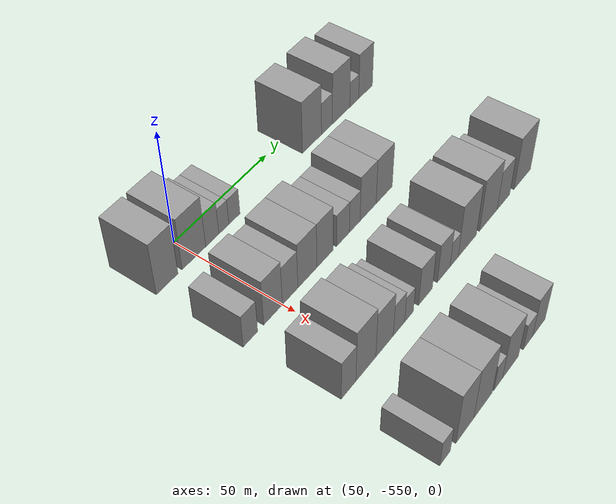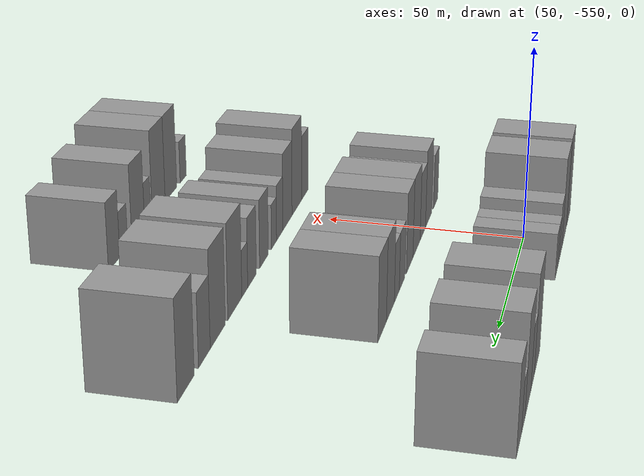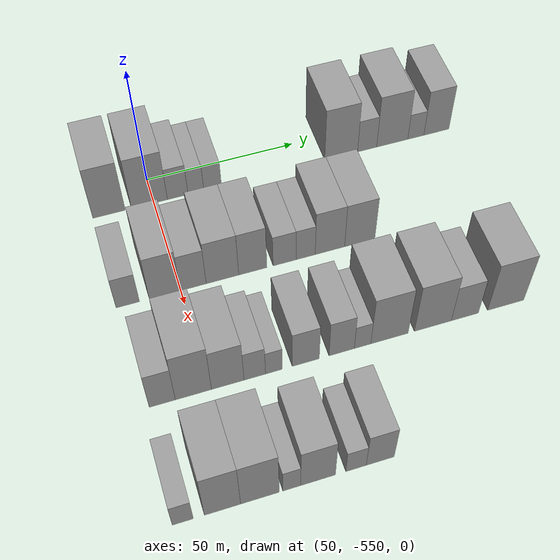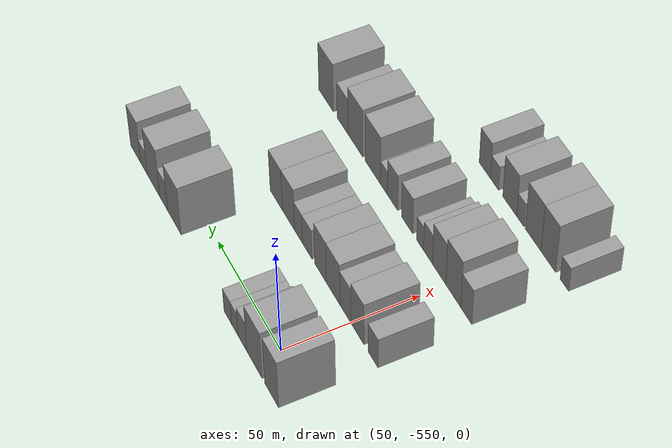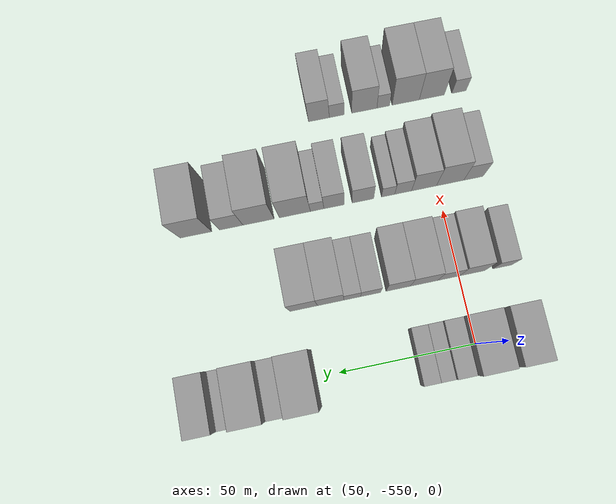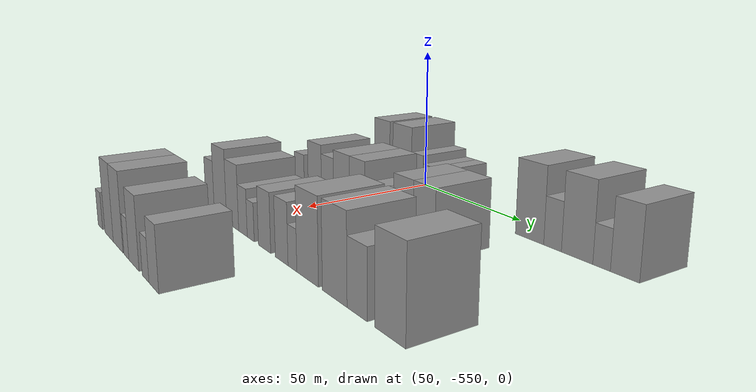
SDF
<sdf version="1.6">
 <world name="default">
  <model name="building_1">
   <static>1</static>
   <pose>50.0000 -564.7196 0 0.000000 0.000000 0.000000</pose>
   <link name="link">
    <pose>0 0 12.00 0 0 0</pose>
    <collision name="collision"><geometry><box><size>20.0000 10.5607 24.0000</size></box></geometry></collision>
    <visual name="visual">
     <cast_shadows>0</cast_shadows>
     <geometry><box><size>20.0000 10.5607 24.0000</size></box></geometry>
     <material>
      <script>
       <uri>model://grey_wall/materials/scripts</uri>
       <uri>model://grey_wall/materials/textures</uri>
       <name>vrc/grey_wall</name>
      </script>
     </material>
    </visual>
   </link>
  </model>
  <model name="building_2">
   <static>1</static>
   <pose>50.0000 -551.4736 0 0.000000 0.000000 0.000000</pose>
   <link name="link">
    <pose>0 0 12.00 0 0 0</pose>
    <collision name="collision"><geometry><box><size>20.0000 11.9315 24.0000</size></box></geometry></collision>
    <visual name="visual">
     <cast_shadows>0</cast_shadows>
     <geometry><box><size>20.0000 11.9315 24.0000</size></box></geometry>
     <material>
      <script>
       <uri>model://grey_wall/materials/scripts</uri>
       <uri>model://grey_wall/materials/textures</uri>
       <name>vrc/grey_wall</name>
      </script>
     </material>
    </visual>
   </link>
  </model>
  <model name="building_3">
   <static>1</static>
   <pose>50.0000 -542.0837 0 0.000000 0.000000 0.000000</pose>
   <link name="link">
    <pose>0 0 7.50 0 0 0</pose>
    <collision name="collision"><geometry><box><size>20.0000 6.8483 15.0000</size></box></geometry></collision>
    <visual name="visual">
     <cast_shadows>0</cast_shadows>
     <geometry><box><size>20.0000 6.8483 15.0000</size></box></geometry>
     <material>
      <script>
       <uri>model://grey_wall/materials/scripts</uri>
       <uri>model://grey_wall/materials/textures</uri>
       <name>vrc/grey_wall</name>
      </script>
     </material>
    </visual>
   </link>
  </model>
  <model name="building_4">
   <static>1</static>
   <pose>50.0000 -536.0153 0 0.000000 0.000000 0.000000</pose>
   <link name="link">
    <pose>0 0 6.00 0 0 0</pose>
    <collision name="collision"><geometry><box><size>20.0000 5.2885 12.0000</size></box></geometry></collision>
    <visual name="visual">
     <cast_shadows>0</cast_shadows>
     <geometry><box><size>20.0000 5.2885 12.0000</size></box></geometry>
     <material>
      <script>
       <uri>model://grey_wall/materials/scripts</uri>
       <uri>model://grey_wall/materials/textures</uri>
       <name>vrc/grey_wall</name>
      </script>
     </material>
    </visual>
   </link>
  </model>
  <model name="building_5">
   <static>1</static>
   <pose>50.0000 -530.3753 0 0.000000 0.000000 0.000000</pose>
   <link name="link">
    <pose>0 0 6.00 0 0 0</pose>
    <collision name="collision"><geometry><box><size>20.0000 5.9915 12.0000</size></box></geometry></collision>
    <visual name="visual">
     <cast_shadows>0</cast_shadows>
     <geometry><box><size>20.0000 5.9915 12.0000</size></box></geometry>
     <material>
      <script>
       <uri>model://grey_wall/materials/scripts</uri>
       <uri>model://grey_wall/materials/textures</uri>
       <name>vrc/grey_wall</name>
      </script>
     </material>
    </visual>
   </link>
  </model>
  <model name="building_6">
   <static>1</static>
   <pose>50.0000 -485.9031 0 0.000000 0.000000 0.000000</pose>
   <link name="link">
    <pose>0 0 12.00 0 0 0</pose>
    <collision name="collision"><geometry><box><size>20.0000 11.6509 24.0000</size></box></geometry></collision>
    <visual name="visual">
     <cast_shadows>0</cast_shadows>
     <geometry><box><size>20.0000 11.6509 24.0000</size></box></geometry>
     <material>
      <script>
       <uri>model://grey_wall/materials/scripts</uri>
       <uri>model://grey_wall/materials/textures</uri>
       <name>vrc/grey_wall</name>
      </script>
     </material>
    </visual>
   </link>
  </model>
  <model name="building_7">
   <static>1</static>
   <pose>50.0000 -476.6846 0 0.000000 0.000000 0.000000</pose>
   <link name="link">
    <pose>0 0 7.50 0 0 0</pose>
    <collision name="collision"><geometry><box><size>20.0000 6.7861 15.0000</size></box></geometry></collision>
    <visual name="visual">
     <cast_shadows>0</cast_shadows>
     <geometry><box><size>20.0000 6.7861 15.0000</size></box></geometry>
     <material>
      <script>
       <uri>model://grey_wall/materials/scripts</uri>
       <uri>model://grey_wall/materials/textures</uri>
       <name>vrc/grey_wall</name>
      </script>
     </material>
    </visual>
   </link>
  </model>
  <model name="building_8">
   <static>1</static>
   <pose>50.0000 -467.6804 0 0.000000 0.000000 0.000000</pose>
   <link name="link">
    <pose>0 0 12.00 0 0 0</pose>
    <collision name="collision"><geometry><box><size>20.0000 11.2222 24.0000</size></box></geometry></collision>
    <visual name="visual">
     <cast_shadows>0</cast_shadows>
     <geometry><box><size>20.0000 11.2222 24.0000</size></box></geometry>
     <material>
      <script>
       <uri>model://grey_wall/materials/scripts</uri>
       <uri>model://grey_wall/materials/textures</uri>
       <name>vrc/grey_wall</name>
      </script>
     </material>
    </visual>
   </link>
  </model>
  <model name="building_9">
   <static>1</static>
   <pose>50.0000 -459.1418 0 0.000000 0.000000 0.000000</pose>
   <link name="link">
    <pose>0 0 6.00 0 0 0</pose>
    <collision name="collision"><geometry><box><size>20.0000 5.8550 12.0000</size></box></geometry></collision>
    <visual name="visual">
     <cast_shadows>0</cast_shadows>
     <geometry><box><size>20.0000 5.8550 12.0000</size></box></geometry>
     <material>
      <script>
       <uri>model://grey_wall/materials/scripts</uri>
       <uri>model://grey_wall/materials/textures</uri>
       <name>vrc/grey_wall</name>
      </script>
     </material>
    </visual>
   </link>
  </model>
  <model name="building_10">
   <static>1</static>
   <pose>50.0000 -451.6347 0 0.000000 0.000000 0.000000</pose>
   <link name="link">
    <pose>0 0 10.50 0 0 0</pose>
    <collision name="collision"><geometry><box><size>20.0000 9.1591 21.0000</size></box></geometry></collision>
    <visual name="visual">
     <cast_shadows>0</cast_shadows>
     <geometry><box><size>20.0000 9.1591 21.0000</size></box></geometry>
     <material>
      <script>
       <uri>model://grey_wall/materials/scripts</uri>
       <uri>model://grey_wall/materials/textures</uri>
       <name>vrc/grey_wall</name>
      </script>
     </material>
    </visual>
   </link>
  </model>
  <model name="building_119">
   <static>1</static>
   <pose>85.0000 -566.3953 0 0.000000 0.000000 0.000000</pose>
   <link name="link">
    <pose>0 0 7.50 0 0 0</pose>
    <collision name="collision"><geometry><box><size>20.0000 7.2094 15.0000</size></box></geometry></collision>
    <visual name="visual">
     <cast_shadows>0</cast_shadows>
     <geometry><box><size>20.0000 7.2094 15.0000</size></box></geometry>
     <material>
      <script>
       <uri>model://grey_wall/materials/scripts</uri>
       <uri>model://grey_wall/materials/textures</uri>
       <name>vrc/grey_wall</name>
      </script>
     </material>
    </visual>
   </link>
  </model>
  <model name="building_120">
   <static>1</static>
   <pose>85.0000 -554.9812 0 0.000000 0.000000 0.000000</pose>
   <link name="link">
    <pose>0 0 10.50 0 0 0</pose>
    <collision name="collision"><geometry><box><size>20.0000 9.6188 21.0000</size></box></geometry></collision>
    <visual name="visual">
     <cast_shadows>0</cast_shadows>
     <geometry><box><size>20.0000 9.6188 21.0000</size></box></geometry>
     <material>
      <script>
       <uri>model://grey_wall/materials/scripts</uri>
       <uri>model://grey_wall/materials/textures</uri>
       <name>vrc/grey_wall</name>
      </script>
     </material>
    </visual>
   </link>
  </model>
  <model name="building_121">
   <static>1</static>
   <pose>85.0000 -546.0590 0 0.000000 0.000000 0.000000</pose>
   <link name="link">
    <pose>0 0 9.00 0 0 0</pose>
    <collision name="collision"><geometry><box><size>20.0000 8.2254 18.0000</size></box></geometry></collision>
    <visual name="visual">
     <cast_shadows>0</cast_shadows>
     <geometry><box><size>20.0000 8.2254 18.0000</size></box></geometry>
     <material>
      <script>
       <uri>model://grey_wall/materials/scripts</uri>
       <uri>model://grey_wall/materials/textures</uri>
       <name>vrc/grey_wall</name>
      </script>
     </material>
    </visual>
   </link>
  </model>
  <model name="building_122">
   <static>1</static>
   <pose>85.0000 -536.7730 0 0.000000 0.000000 0.000000</pose>
   <link name="link">
    <pose>0 0 10.50 0 0 0</pose>
    <collision name="collision"><geometry><box><size>20.0000 10.3467 21.0000</size></box></geometry></collision>
    <visual name="visual">
     <cast_shadows>0</cast_shadows>
     <geometry><box><size>20.0000 10.3467 21.0000</size></box></geometry>
     <material>
      <script>
       <uri>model://grey_wall/materials/scripts</uri>
       <uri>model://grey_wall/materials/textures</uri>
       <name>vrc/grey_wall</name>
      </script>
     </material>
    </visual>
   </link>
  </model>
  <model name="building_123">
   <static>1</static>
   <pose>85.0000 -527.0674 0 0.000000 0.000000 0.000000</pose>
   <link name="link">
    <pose>0 0 10.50 0 0 0</pose>
    <collision name="collision"><geometry><box><size>20.0000 9.0643 21.0000</size></box></geometry></collision>
    <visual name="visual">
     <cast_shadows>0</cast_shadows>
     <geometry><box><size>20.0000 9.0643 21.0000</size></box></geometry>
     <material>
      <script>
       <uri>model://grey_wall/materials/scripts</uri>
       <uri>model://grey_wall/materials/textures</uri>
       <name>vrc/grey_wall</name>
      </script>
     </material>
    </visual>
   </link>
  </model>
  <model name="building_124">
   <static>1</static>
   <pose>85.0000 -516.8049 0 0.000000 0.000000 0.000000</pose>
   <link name="link">
    <pose>0 0 7.50 0 0 0</pose>
    <collision name="collision"><geometry><box><size>20.0000 7.4608 15.0000</size></box></geometry></collision>
    <visual name="visual">
     <cast_shadows>0</cast_shadows>
     <geometry><box><size>20.0000 7.4608 15.0000</size></box></geometry>
     <material>
      <script>
       <uri>model://grey_wall/materials/scripts</uri>
       <uri>model://grey_wall/materials/textures</uri>
       <name>vrc/grey_wall</name>
      </script>
     </material>
    </visual>
   </link>
  </model>
  <model name="building_125">
   <static>1</static>
   <pose>85.0000 -509.9454 0 0.000000 0.000000 0.000000</pose>
   <link name="link">
    <pose>0 0 7.50 0 0 0</pose>
    <collision name="collision"><geometry><box><size>20.0000 6.2583 15.0000</size></box></geometry></collision>
    <visual name="visual">
     <cast_shadows>0</cast_shadows>
     <geometry><box><size>20.0000 6.2583 15.0000</size></box></geometry>
     <material>
      <script>
       <uri>model://grey_wall/materials/scripts</uri>
       <uri>model://grey_wall/materials/textures</uri>
       <name>vrc/grey_wall</name>
      </script>
     </material>
    </visual>
   </link>
  </model>
  <model name="building_126">
   <static>1</static>
   <pose>85.0000 -501.9512 0 0.000000 0.000000 0.000000</pose>
   <link name="link">
    <pose>0 0 10.50 0 0 0</pose>
    <collision name="collision"><geometry><box><size>20.0000 9.7301 21.0000</size></box></geometry></collision>
    <visual name="visual">
     <cast_shadows>0</cast_shadows>
     <geometry><box><size>20.0000 9.7301 21.0000</size></box></geometry>
     <material>
      <script>
       <uri>model://grey_wall/materials/scripts</uri>
       <uri>model://grey_wall/materials/textures</uri>
       <name>vrc/grey_wall</name>
      </script>
     </material>
    </visual>
   </link>
  </model>
  <model name="building_127">
   <static>1</static>
   <pose>85.0000 -492.0390 0 0.000000 0.000000 0.000000</pose>
   <link name="link">
    <pose>0 0 10.50 0 0 0</pose>
    <collision name="collision"><geometry><box><size>20.0000 10.0943 21.0000</size></box></geometry></collision>
    <visual name="visual">
     <cast_shadows>0</cast_shadows>
     <geometry><box><size>20.0000 10.0943 21.0000</size></box></geometry>
     <material>
      <script>
       <uri>model://grey_wall/materials/scripts</uri>
       <uri>model://grey_wall/materials/textures</uri>
       <name>vrc/grey_wall</name>
      </script>
     </material>
    </visual>
   </link>
  </model>
  <model name="building_244">
   <static>1</static>
   <pose>120.0000 -564.2014 0 0.000000 0.000000 0.000000</pose>
   <link name="link">
    <pose>0 0 9.00 0 0 0</pose>
    <collision name="collision"><geometry><box><size>20.0000 7.5972 18.0000</size></box></geometry></collision>
    <visual name="visual">
     <cast_shadows>0</cast_shadows>
     <geometry><box><size>20.0000 7.5972 18.0000</size></box></geometry>
     <material>
      <script>
       <uri>model://grey_wall/materials/scripts</uri>
       <uri>model://grey_wall/materials/textures</uri>
       <name>vrc/grey_wall</name>
      </script>
     </material>
    </visual>
   </link>
  </model>
  <model name="building_245">
   <static>1</static>
   <pose>120.0000 -555.0957 0 0.000000 0.000000 0.000000</pose>
   <link name="link">
    <pose>0 0 12.00 0 0 0</pose>
    <collision name="collision"><geometry><box><size>20.0000 10.6141 24.0000</size></box></geometry></collision>
    <visual name="visual">
     <cast_shadows>0</cast_shadows>
     <geometry><box><size>20.0000 10.6141 24.0000</size></box></geometry>
     <material>
      <script>
       <uri>model://grey_wall/materials/scripts</uri>
       <uri>model://grey_wall/materials/textures</uri>
       <name>vrc/grey_wall</name>
      </script>
     </material>
    </visual>
   </link>
  </model>
  <model name="building_246">
   <static>1</static>
   <pose>120.0000 -544.9518 0 0.000000 0.000000 0.000000</pose>
   <link name="link">
    <pose>0 0 10.50 0 0 0</pose>
    <collision name="collision"><geometry><box><size>20.0000 9.6738 21.0000</size></box></geometry></collision>
    <visual name="visual">
     <cast_shadows>0</cast_shadows>
     <geometry><box><size>20.0000 9.6738 21.0000</size></box></geometry>
     <material>
      <script>
       <uri>model://grey_wall/materials/scripts</uri>
       <uri>model://grey_wall/materials/textures</uri>
       <name>vrc/grey_wall</name>
      </script>
     </material>
    </visual>
   </link>
  </model>
  <model name="building_247">
   <static>1</static>
   <pose>120.0000 -536.8824 0 0.000000 0.000000 0.000000</pose>
   <link name="link">
    <pose>0 0 7.50 0 0 0</pose>
    <collision name="collision"><geometry><box><size>20.0000 6.4649 15.0000</size></box></geometry></collision>
    <visual name="visual">
     <cast_shadows>0</cast_shadows>
     <geometry><box><size>20.0000 6.4649 15.0000</size></box></geometry>
     <material>
      <script>
       <uri>model://grey_wall/materials/scripts</uri>
       <uri>model://grey_wall/materials/textures</uri>
       <name>vrc/grey_wall</name>
      </script>
     </material>
    </visual>
   </link>
  </model>
  <model name="building_248">
   <static>1</static>
   <pose>120.0000 -531.1086 0 0.000000 0.000000 0.000000</pose>
   <link name="link">
    <pose>0 0 6.00 0 0 0</pose>
    <collision name="collision"><geometry><box><size>20.0000 5.0826 12.0000</size></box></geometry></collision>
    <visual name="visual">
     <cast_shadows>0</cast_shadows>
     <geometry><box><size>20.0000 5.0826 12.0000</size></box></geometry>
     <material>
      <script>
       <uri>model://grey_wall/materials/scripts</uri>
       <uri>model://grey_wall/materials/textures</uri>
       <name>vrc/grey_wall</name>
      </script>
     </material>
    </visual>
   </link>
  </model>
  <model name="building_249">
   <static>1</static>
   <pose>120.0000 -521.4335 0 0.000000 0.000000 0.000000</pose>
   <link name="link">
    <pose>0 0 9.00 0 0 0</pose>
    <collision name="collision"><geometry><box><size>20.0000 8.2676 18.0000</size></box></geometry></collision>
    <visual name="visual">
     <cast_shadows>0</cast_shadows>
     <geometry><box><size>20.0000 8.2676 18.0000</size></box></geometry>
     <material>
      <script>
       <uri>model://grey_wall/materials/scripts</uri>
       <uri>model://grey_wall/materials/textures</uri>
       <name>vrc/grey_wall</name>
      </script>
     </material>
    </visual>
   </link>
  </model>
  <model name="building_250">
   <static>1</static>
   <pose>120.0000 -510.3889 0 0.000000 0.000000 0.000000</pose>
   <link name="link">
    <pose>0 0 9.00 0 0 0</pose>
    <collision name="collision"><geometry><box><size>20.0000 7.8214 18.0000</size></box></geometry></collision>
    <visual name="visual">
     <cast_shadows>0</cast_shadows>
     <geometry><box><size>20.0000 7.8214 18.0000</size></box></geometry>
     <material>
      <script>
       <uri>model://grey_wall/materials/scripts</uri>
       <uri>model://grey_wall/materials/textures</uri>
       <name>vrc/grey_wall</name>
      </script>
     </material>
    </visual>
   </link>
  </model>
  <model name="building_251">
   <static>1</static>
   <pose>120.0000 -503.9011 0 0.000000 0.000000 0.000000</pose>
   <link name="link">
    <pose>0 0 6.00 0 0 0</pose>
    <collision name="collision"><geometry><box><size>20.0000 5.1543 12.0000</size></box></geometry></collision>
    <visual name="visual">
     <cast_shadows>0</cast_shadows>
     <geometry><box><size>20.0000 5.1543 12.0000</size></box></geometry>
     <material>
      <script>
       <uri>model://grey_wall/materials/scripts</uri>
       <uri>model://grey_wall/materials/textures</uri>
       <name>vrc/grey_wall</name>
      </script>
     </material>
    </visual>
   </link>
  </model>
  <model name="building_252">
   <static>1</static>
   <pose>120.0000 -495.4341 0 0.000000 0.000000 0.000000</pose>
   <link name="link">
    <pose>0 0 12.00 0 0 0</pose>
    <collision name="collision"><geometry><box><size>20.0000 11.7798 24.0000</size></box></geometry></collision>
    <visual name="visual">
     <cast_shadows>0</cast_shadows>
     <geometry><box><size>20.0000 11.7798 24.0000</size></box></geometry>
     <material>
      <script>
       <uri>model://grey_wall/materials/scripts</uri>
       <uri>model://grey_wall/materials/textures</uri>
       <name>vrc/grey_wall</name>
      </script>
     </material>
    </visual>
   </link>
  </model>
  <model name="building_253">
   <static>1</static>
   <pose>120.0000 -481.6303 0 0.000000 0.000000 0.000000</pose>
   <link name="link">
    <pose>0 0 12.00 0 0 0</pose>
    <collision name="collision"><geometry><box><size>20.0000 11.8277 24.0000</size></box></geometry></collision>
    <visual name="visual">
     <cast_shadows>0</cast_shadows>
     <geometry><box><size>20.0000 11.8277 24.0000</size></box></geometry>
     <material>
      <script>
       <uri>model://grey_wall/materials/scripts</uri>
       <uri>model://grey_wall/materials/textures</uri>
       <name>vrc/grey_wall</name>
      </script>
     </material>
    </visual>
   </link>
  </model>
  <model name="building_254">
   <static>1</static>
   <pose>120.0000 -471.3170 0 0.000000 0.000000 0.000000</pose>
   <link name="link">
    <pose>0 0 9.00 0 0 0</pose>
    <collision name="collision"><geometry><box><size>20.0000 8.7990 18.0000</size></box></geometry></collision>
    <visual name="visual">
     <cast_shadows>0</cast_shadows>
     <geometry><box><size>20.0000 8.7990 18.0000</size></box></geometry>
     <material>
      <script>
       <uri>model://grey_wall/materials/scripts</uri>
       <uri>model://grey_wall/materials/textures</uri>
       <name>vrc/grey_wall</name>
      </script>
     </material>
    </visual>
   </link>
  </model>
  <model name="building_255">
   <static>1</static>
   <pose>120.0000 -457.9702 0 0.000000 0.000000 0.000000</pose>
   <link name="link">
    <pose>0 0 12.00 0 0 0</pose>
    <collision name="collision"><geometry><box><size>20.0000 11.8944 24.0000</size></box></geometry></collision>
    <visual name="visual">
     <cast_shadows>0</cast_shadows>
     <geometry><box><size>20.0000 11.8944 24.0000</size></box></geometry>
     <material>
      <script>
       <uri>model://grey_wall/materials/scripts</uri>
       <uri>model://grey_wall/materials/textures</uri>
       <name>vrc/grey_wall</name>
      </script>
     </material>
    </visual>
   </link>
  </model>
  <model name="building_364">
   <static>1</static>
   <pose>155.0000 -567.1345 0 0.000000 0.000000 0.000000</pose>
   <link name="link">
    <pose>0 0 6.00 0 0 0</pose>
    <collision name="collision"><geometry><box><size>20.0000 5.7309 12.0000</size></box></geometry></collision>
    <visual name="visual">
     <cast_shadows>0</cast_shadows>
     <geometry><box><size>20.0000 5.7309 12.0000</size></box></geometry>
     <material>
      <script>
       <uri>model://grey_wall/materials/scripts</uri>
       <uri>model://grey_wall/materials/textures</uri>
       <name>vrc/grey_wall</name>
      </script>
     </material>
    </visual>
   </link>
  </model>
  <model name="building_365">
   <static>1</static>
   <pose>155.0000 -556.2629 0 0.000000 0.000000 0.000000</pose>
   <link name="link">
    <pose>0 0 12.00 0 0 0</pose>
    <collision name="collision"><geometry><box><size>20.0000 10.0124 24.0000</size></box></geometry></collision>
    <visual name="visual">
     <cast_shadows>0</cast_shadows>
     <geometry><box><size>20.0000 10.0124 24.0000</size></box></geometry>
     <material>
      <script>
       <uri>model://grey_wall/materials/scripts</uri>
       <uri>model://grey_wall/materials/textures</uri>
       <name>vrc/grey_wall</name>
      </script>
     </material>
    </visual>
   </link>
  </model>
  <model name="building_366">
   <static>1</static>
   <pose>155.0000 -545.8577 0 0.000000 0.000000 0.000000</pose>
   <link name="link">
    <pose>0 0 12.00 0 0 0</pose>
    <collision name="collision"><geometry><box><size>20.0000 10.7978 24.0000</size></box></geometry></collision>
    <visual name="visual">
     <cast_shadows>0</cast_shadows>
     <geometry><box><size>20.0000 10.7978 24.0000</size></box></geometry>
     <material>
      <script>
       <uri>model://grey_wall/materials/scripts</uri>
       <uri>model://grey_wall/materials/textures</uri>
       <name>vrc/grey_wall</name>
      </script>
     </material>
    </visual>
   </link>
  </model>
  <model name="building_367">
   <static>1</static>
   <pose>155.0000 -536.9388 0 0.000000 0.000000 0.000000</pose>
   <link name="link">
    <pose>0 0 6.00 0 0 0</pose>
    <collision name="collision"><geometry><box><size>20.0000 5.0400 12.0000</size></box></geometry></collision>
    <visual name="visual">
     <cast_shadows>0</cast_shadows>
     <geometry><box><size>20.0000 5.0400 12.0000</size></box></geometry>
     <material>
      <script>
       <uri>model://grey_wall/materials/scripts</uri>
       <uri>model://grey_wall/materials/textures</uri>
       <name>vrc/grey_wall</name>
      </script>
     </material>
    </visual>
   </link>
  </model>
  <model name="building_368">
   <static>1</static>
   <pose>155.0000 -529.4599 0 0.000000 0.000000 0.000000</pose>
   <link name="link">
    <pose>0 0 10.50 0 0 0</pose>
    <collision name="collision"><geometry><box><size>20.0000 9.9177 21.0000</size></box></geometry></collision>
    <visual name="visual">
     <cast_shadows>0</cast_shadows>
     <geometry><box><size>20.0000 9.9177 21.0000</size></box></geometry>
     <material>
      <script>
       <uri>model://grey_wall/materials/scripts</uri>
       <uri>model://grey_wall/materials/textures</uri>
       <name>vrc/grey_wall</name>
      </script>
     </material>
    </visual>
   </link>
  </model>
  <model name="building_369">
   <static>1</static>
   <pose>155.0000 -518.5584 0 0.000000 0.000000 0.000000</pose>
   <link name="link">
    <pose>0 0 6.00 0 0 0</pose>
    <collision name="collision"><geometry><box><size>20.0000 5.8853 12.0000</size></box></geometry></collision>
    <visual name="visual">
     <cast_shadows>0</cast_shadows>
     <geometry><box><size>20.0000 5.8853 12.0000</size></box></geometry>
     <material>
      <script>
       <uri>model://grey_wall/materials/scripts</uri>
       <uri>model://grey_wall/materials/textures</uri>
       <name>vrc/grey_wall</name>
      </script>
     </material>
    </visual>
   </link>
  </model>
  <model name="building_370">
   <static>1</static>
   <pose>155.0000 -511.5236 0 0.000000 0.000000 0.000000</pose>
   <link name="link">
    <pose>0 0 9.00 0 0 0</pose>
    <collision name="collision"><geometry><box><size>20.0000 8.1845 18.0000</size></box></geometry></collision>
    <visual name="visual">
     <cast_shadows>0</cast_shadows>
     <geometry><box><size>20.0000 8.1845 18.0000</size></box></geometry>
     <material>
      <script>
       <uri>model://grey_wall/materials/scripts</uri>
       <uri>model://grey_wall/materials/textures</uri>
       <name>vrc/grey_wall</name>
      </script>
     </material>
    </visual>
   </link>
  </model>
 </world>
</sdf>
